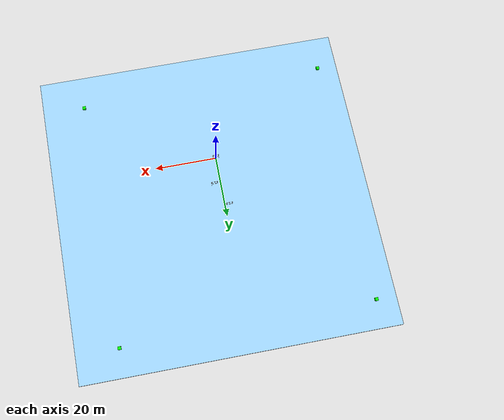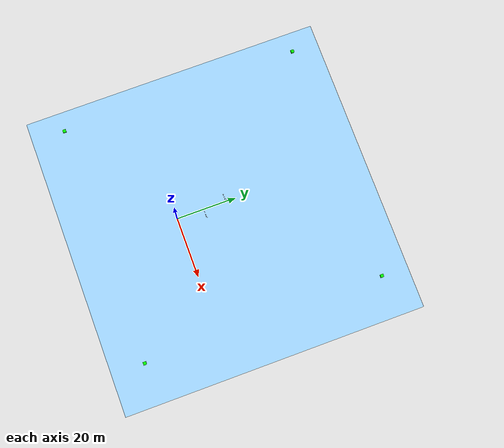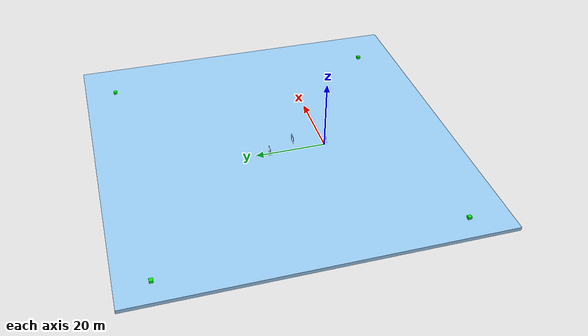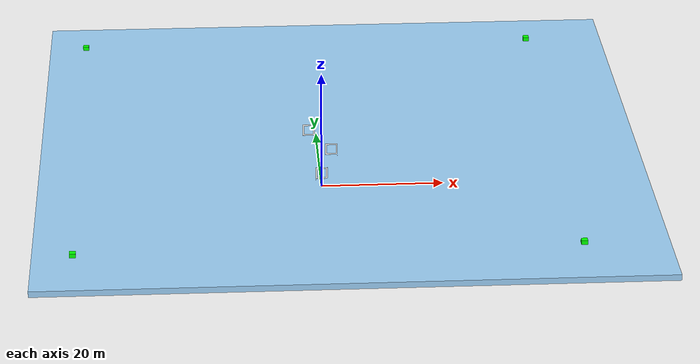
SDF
<sdf version="1.9">
 <world name="sitl">
  <light type="directional" name="sun">
   <pose>0 0 10 0 0 0</pose>
   <diffuse>0.9 0.9 0.9 1</diffuse>
   <specular>0.5 0.5 0.5 1</specular>
   <direction>-0.5 0.1 -0.9</direction>
  </light>
  <physics name="4ms" type="ignored">
   <max_step_size>0.004</max_step_size>
   <real_time_factor>1.0</real_time_factor>
   <dart><solver><solver_type>pgs</solver_type></solver><collision_detector>bullet</collision_detector></dart>
  </physics>
  <plugin name="gz::sim::systems::Physics" filename="ignition-gazebo-physics-system"/>
  <plugin name="gz::sim::systems::UserCommands" filename="ignition-gazebo-user-commands-system"/>
  <plugin name="gz::sim::systems::SceneBroadcaster" filename="ignition-gazebo-scene-broadcaster-system"/>
  <plugin name="gz::sim::systems::Contact" filename="ignition-gazebo-contact-system"/>
  <plugin name="ignition::gazebo::systems::Imu" filename="libignition-gazebo-imu-system.so"/>
  <plugin filename="ignition-gazebo-navsat-system" name="ignition::gazebo::systems::NavSat"/>
  <plugin filename="ignition-gazebo-sensors-system" name="gz::sim::systems::Sensors">
   <render_engine>ogre2</render_engine>
  </plugin>
  <plugin filename="ignition-gazebo-scene-broadcaster-system" name="gz::sim::systems::SceneBroadcaster">
   <state_hertz>125</state_hertz>
   <dynamic_pose_hertz>125</dynamic_pose_hertz>
  </plugin>
  <plugin filename="ignition-gazebo-air-pressure-system" name="gz::sim::systems::AirPressure"/>
  <light type="point" name="ceiling_light_1">
   <cast_shadows>false</cast_shadows>
   <pose>-9.07 6 9 0 0 0</pose>
   <diffuse>0.7 0.7 0.7 1</diffuse>
   <specular>0.1 0.1 0.1 1</specular>
   <attenuation>
    <range>25</range>
    <linear>0.08</linear>
    <constant>0.2</constant>
    <quadratic>0.001</quadratic>
   </attenuation>
  </light>
  <light type="point" name="ceiling_light_2">
   <cast_shadows>false</cast_shadows>
   <pose>9.07 -6 9 0 0 0</pose>
   <diffuse>0.7 0.7 0.7 1</diffuse>
   <specular>0.1 0.1 0.1 1</specular>
   <attenuation>
    <range>25</range>
    <linear>0.08</linear>
    <constant>0.2</constant>
    <quadratic>0.001</quadratic>
   </attenuation>
  </light>
  <light type="point" name="ceiling_light_3">
   <cast_shadows>false</cast_shadows>
   <pose>-9.07 -6 9 0 0 0</pose>
   <diffuse>0.7 0.7 0.7 1</diffuse>
   <specular>0.1 0.1 0.1 1</specular>
   <attenuation>
    <range>25</range>
    <linear>0.08</linear>
    <constant>0.2</constant>
    <quadratic>0.001</quadratic>
   </attenuation>
  </light>
  <light type="point" name="ceiling_light_4">
   <cast_shadows>false</cast_shadows>
   <pose>9.07 6 9 0 0 0</pose>
   <diffuse>0.7 0.7 0.7 1</diffuse>
   <specular>0.1 0.1 0.1 1</specular>
   <attenuation>
    <range>25</range>
    <linear>0.08</linear>
    <constant>0.2</constant>
    <quadratic>0.001</quadratic>
   </attenuation>
  </light>
  <include><uri>model://frame_low_full</uri><name>gate1</name><pose>0 0 1.37 0 0 -3.14</pose></include>
  <include><uri>model://frame_low_full</uri><name>gate2</name><pose>2.06 8.97 1.37 0 0 -3.14</pose></include>
  <include><uri>model://frame_low_full</uri><name>gate3</name><pose>-1.38 16.58 1.37 0 0 -3.14</pose></include>
  <include><uri>model://green_box</uri><name>box1</name><pose>-40 -25 1.5 0 0 0</pose></include>
  <include><uri>model://green_box</uri><name>box2</name><pose>-40 55 1.5 0 0 0</pose></include>
  <include><uri>model://green_box</uri><name>box3</name><pose>40 -25 1.5 0 0 0</pose></include>
  <include><uri>model://green_box</uri><name>box4</name><pose>40 55 1.5 0 0 0</pose></include>
  <model name="plane">
   <static>1</static>
   <pose>3.60000 13.90000 0.80000 0 0 0</pose>
   <link name="link">
    <collision name="collision"><geometry><box><size>100 100 1</size></box></geometry></collision>
    <visual name="visual">
     <geometry><box><size>100 100 1</size></box></geometry>
     <material>
      <ambient>0.6 0.8 0.95 1.0</ambient>
      <diffuse>0.6 0.8 0.95 1.0</diffuse>
      <specular>0.1 0.1 0.1 1.0</specular>
     </material>
    </visual>
   </link>
  </model>
  <plugin name="gz::sim" filename="dummy"/>
 </world>
</sdf>

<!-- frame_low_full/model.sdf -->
<sdf version="1.9">
  <model name="frame_low_full">
    <static>true</static>
    <pose>0 0 0.57 0 0 0</pose>
    <link name="base_link">
      <visual name="visual">
        <geometry>
          <mesh>
            <uri>./meshes/frame_low_full.dae</uri>
          </mesh>
        </geometry>
      </visual>
      <collision name="collision">
        <geometry>
          <mesh>
            <uri>./meshes/frame_low_full.dae</uri>
          </mesh>
        </geometry>
      </collision>
    </link>
  </model>
</sdf>

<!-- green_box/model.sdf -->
<sdf version="1.9">
  <model name='green_box'>
    <static>1</static>
    <pose>0 0 0 0 0 0</pose>
    <link name='link'>
      <collision name="collision">
        <geometry>
          <box>
            <size>1 1 1</size>
          </box>
        </geometry>
      </collision>
      <visual name="visual">
        <geometry>
          <box>
            <size>1 1 1</size>
          </box>
        </geometry>
        <material>
          <ambient>0 1 0 1</ambient>
          <diffuse>0 1 0 1</diffuse>
          <specular>0.1 0.1 0.1 1</specular>
        </material>
      </visual>
    </link>
  </model>
</sdf>
